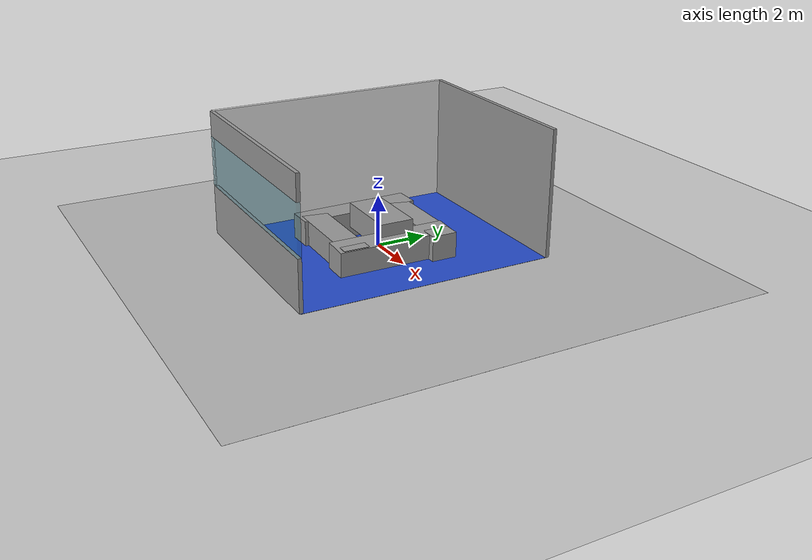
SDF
<sdf version="1.7">
 <world name="default">
  <light name="sun" type="directional">
   <pose>0 0 10 0 -0 0</pose>
   <diffuse>0.8 0.8 0.8 1</diffuse>
   <specular>0.2 0.2 0.2 1</specular>
   <attenuation>
    <range>1000</range>
    <constant>0.9</constant>
    <linear>0.01</linear>
    <quadratic>0.001</quadratic>
   </attenuation>
   <direction>-0.5 0.1 -0.9</direction>
   <spot><inner_angle>0</inner_angle><outer_angle>0</outer_angle><falloff>0</falloff></spot>
  </light>
  <model name="ground_plane">
   <static>1</static>
   <link name="link">
    <collision name="collision">
     <geometry><plane><normal>0 0 1</normal><size>7.5 8.6</size></plane></geometry>
     <surface><friction><ode><mu>100</mu><mu2>50</mu2></ode></friction></surface>
    </collision>
    <visual name="visual">
     <cast_shadows>0</cast_shadows>
     <geometry><plane><normal>0 0 1</normal><size>7.5 8.6</size></plane></geometry>
     <material>
      <script><uri>file://media/materials/scripts/gazebo.material</uri><name>Gazebo/Grey</name></script>
     </material>
    </visual>
   </link>
  </model>
  <physics name="default_physics" default="0" type="ode">
   <ode>
    <solver>
     <type>quick</type>
     <iters>10</iters>
     <sor>1.3</sor>
     <use_dynamic_moi_rescaling>0</use_dynamic_moi_rescaling>
    </solver>
    <constraints>
     <cfm>0</cfm>
     <erp>0.2</erp>
     <contact_max_correcting_vel>100</contact_max_correcting_vel>
     <contact_surface_layer>0.001</contact_surface_layer>
    </constraints>
   </ode>
   <max_step_size>0.004</max_step_size>
   <real_time_factor>1</real_time_factor>
   <real_time_update_rate>250</real_time_update_rate>
  </physics>
  <gravity>0 0 -9.8066</gravity>
  <magnetic_field>6e-06 2.3e-05 -4.2e-05</magnetic_field>
  <atmosphere type="adiabatic"/>
  <scene><ambient>0.4 0.4 0.4 1</ambient><background>0.7 0.7 0.7 1</background><shadows>1</shadows></scene>
  <spherical_coordinates>
   <surface_model>EARTH_WGS84</surface_model>
   <latitude_deg>0</latitude_deg>
   <longitude_deg>0</longitude_deg>
   <elevation>0</elevation>
   <heading_deg>0</heading_deg>
  </spherical_coordinates>
  <model name="Floor_room">
   <link name="main">
    <pose>0 0 0.01 0 -0 0</pose>
    <collision name="main_Collision"><geometry><box><size>20 20 0.001</size></box></geometry></collision>
    <visual name="main_Visual">
     <geometry><box><size>20 20 0.001</size></box></geometry>
     <material>
      <script>
       <uri>model://Floor_room/materials/scripts</uri>
       <uri>model://Floor_room/materials/textures</uri>
       <name>floor_room</name>
      </script>
     </material>
    </visual>
   </link>
   <static>1</static>
   <pose>0.043797 -0.01325 0 0 -0 0</pose>
  </model>
  <model name="window">
   <link name="link_2">
    <pose>-3.65586 -0.020997 0.361529 0 -0 0</pose>
    <inertial>
     <mass>1</mass>
     <inertia><ixx>1</ixx><ixy>0</ixy><ixz>0</ixz><iyy>1</iyy><iyz>0</iyz><izz>1</izz></inertia>
    </inertial>
    <visual name="visual">
     <pose>0 0 0.9 0 -0 0</pose>
     <geometry><box><size>8 0.15 2</size></box></geometry>
     <material>
      <lighting>1</lighting>
      <ambient>0.1 0.5 0.6 1</ambient>
      <diffuse>0.1 0.5 0.6 1</diffuse>
      <specular>0.01 0.01 0.01 1</specular>
      <emissive>0 0 0 1</emissive>
      <shader type="pixel"><normal_map>__default__</normal_map></shader>
      <script><name>ModelPreview_13::link_2::visual_MATERIAL_</name><uri>__default__</uri></script>
     </material>
     <transparency>0.7</transparency>
    </visual>
    <collision name="collision">
     <pose>0 0 0.9 0 -0 0</pose>
     <geometry><box><size>0.8 0.15 0.8</size></box></geometry>
     <surface>
      <friction>
       <ode><mu>1</mu><mu2>1</mu2><fdir1>0 0 0</fdir1><slip1>0</slip1><slip2>0</slip2></ode>
       <torsional>
        <coefficient>1</coefficient>
        <patch_radius>0</patch_radius>
        <surface_radius>0</surface_radius>
        <use_patch_radius>1</use_patch_radius>
        <ode><slip>0</slip></ode>
       </torsional>
      </friction>
      <bounce><restitution_coefficient>0</restitution_coefficient><threshold>1e+06</threshold></bounce>
      <contact>
       <collide_without_contact>0</collide_without_contact>
       <collide_without_contact_bitmask>1</collide_without_contact_bitmask>
       <collide_bitmask>1</collide_bitmask>
       <ode>
        <soft_cfm>0</soft_cfm>
        <soft_erp>0.2</soft_erp>
        <kp>1e+13</kp>
        <kd>1</kd>
        <max_vel>0.01</max_vel>
        <min_depth>0</min_depth>
       </ode>
       <bullet>
        <split_impulse>1</split_impulse>
        <split_impulse_penetration_threshold>-0.01</split_impulse_penetration_threshold>
        <soft_cfm>0</soft_cfm>
        <soft_erp>0.2</soft_erp>
        <kp>1e+13</kp>
        <kd>1</kd>
       </bullet>
      </contact>
     </surface>
    </collision>
   </link>
   <static>1</static>
   <pose>3.62277 -4.97689 1.7565 0 -0 0</pose>
  </model>
  <model name="Workshop">
   <link name="Wall_10">
    <pose>-2.5053 2.09449 2 0 0 -1.5708</pose>
    <inertial>
     <mass>1</mass>
     <inertia><ixx>1</ixx><ixy>0</ixy><ixz>0</ixz><iyy>1</iyy><iyz>0</iyz><izz>1</izz></inertia>
    </inertial>
    <visual name="Wall_10_Visual">
     <pose>0 0 0.5 0 -0 0</pose>
     <geometry><box><size>10 0.15 5</size></box></geometry>
     <material>
      <script><uri>file://media/materials/scripts/gazebo.material</uri><name>Gazebo/White</name></script>
      <ambient>1 1 1 1</ambient>
      <shader type="pixel"><normal_map>__default__</normal_map></shader>
      <diffuse>0.7 0.7 0.7 1</diffuse>
      <specular>0.01 0.01 0.01 1</specular>
      <emissive>0 0 0 1</emissive>
     </material>
    </visual>
    <collision name="Wall_10_Collision">
     <pose>0 0 0.5 0 -0 0</pose>
     <geometry><box><size>10 0.15 1</size></box></geometry>
     <surface>
      <friction>
       <ode><mu>1</mu><mu2>1</mu2><fdir1>0 0 0</fdir1><slip1>0</slip1><slip2>0</slip2></ode>
       <torsional>
        <coefficient>1</coefficient>
        <patch_radius>0</patch_radius>
        <surface_radius>0</surface_radius>
        <use_patch_radius>1</use_patch_radius>
        <ode><slip>0</slip></ode>
       </torsional>
      </friction>
      <bounce><restitution_coefficient>0</restitution_coefficient><threshold>1e+06</threshold></bounce>
      <contact>
       <collide_without_contact>0</collide_without_contact>
       <collide_without_contact_bitmask>1</collide_without_contact_bitmask>
       <collide_bitmask>1</collide_bitmask>
       <ode>
        <soft_cfm>0</soft_cfm>
        <soft_erp>0.2</soft_erp>
        <kp>1e+13</kp>
        <kd>1</kd>
        <max_vel>0.01</max_vel>
        <min_depth>0</min_depth>
       </ode>
       <bullet>
        <split_impulse>1</split_impulse>
        <split_impulse_penetration_threshold>-0.01</split_impulse_penetration_threshold>
        <soft_cfm>0</soft_cfm>
        <soft_erp>0.2</soft_erp>
        <kp>1e+13</kp>
        <kd>1</kd>
       </bullet>
      </contact>
     </surface>
    </collision>
   </link>
   <link name="Wall_11">
    <pose>1.46131 -2.90507 0.516113 0 -0 3.14159</pose>
    <inertial>
     <inertia><ixx>0</ixx><ixy>0</ixy><ixz>0</ixz><iyy>0</iyy><iyz>0</iyz><izz>0</izz></inertia>
     <mass>0</mass>
    </inertial>
    <visual name="Wall_11_Visual">
     <pose>0 0 0.5 0 -0 0</pose>
     <geometry><box><size>8 0.15 2</size></box></geometry>
     <material>
      <script><uri>file://media/materials/scripts/gazebo.material</uri><name>Gazebo/Grey</name></script>
      <ambient>1 1 1 1</ambient>
      <shader type="pixel"><normal_map>__default__</normal_map></shader>
      <emissive>0 0 0 1</emissive>
      <diffuse>0.7 0.7 0.7 1</diffuse>
      <specular>0.01 0.01 0.01 1</specular>
     </material>
    </visual>
    <collision name="Wall_11_Collision">
     <pose>0 0 0.5 0 -0 0</pose>
     <geometry><box><size>7.71217 0.15 1</size></box></geometry>
     <surface>
      <friction>
       <ode><mu>1</mu><mu2>1</mu2><fdir1>0 0 0</fdir1><slip1>0</slip1><slip2>0</slip2></ode>
       <torsional>
        <coefficient>1</coefficient>
        <patch_radius>0</patch_radius>
        <surface_radius>0</surface_radius>
        <use_patch_radius>1</use_patch_radius>
        <ode><slip>0</slip></ode>
       </torsional>
      </friction>
      <bounce><restitution_coefficient>0</restitution_coefficient><threshold>1e+06</threshold></bounce>
      <contact>
       <collide_without_contact>0</collide_without_contact>
       <collide_without_contact_bitmask>1</collide_without_contact_bitmask>
       <collide_bitmask>1</collide_bitmask>
       <ode>
        <soft_cfm>0</soft_cfm>
        <soft_erp>0.2</soft_erp>
        <kp>1e+13</kp>
        <kd>1</kd>
        <max_vel>0.01</max_vel>
        <min_depth>0</min_depth>
       </ode>
       <bullet>
        <split_impulse>1</split_impulse>
        <split_impulse_penetration_threshold>-0.01</split_impulse_penetration_threshold>
        <soft_cfm>0</soft_cfm>
        <soft_erp>0.2</soft_erp>
        <kp>1e+13</kp>
        <kd>1</kd>
       </bullet>
      </contact>
     </surface>
    </collision>
   </link>
   <link name="Wall_11_clone">
    <pose>1.4947 -2.90551 4 0 -0 3.14159</pose>
    <inertial>
     <inertia><ixx>0</ixx><ixy>0</ixy><ixz>0</ixz><iyy>0</iyy><iyz>0</iyz><izz>0</izz></inertia>
     <mass>0</mass>
    </inertial>
    <visual name="Wall_11_Visual">
     <pose>0 0 0.5 0 -0 0</pose>
     <geometry><box><size>8 0.15 1</size></box></geometry>
     <material>
      <script><uri>file://media/materials/scripts/gazebo.material</uri><name>Gazebo/Grey</name></script>
      <ambient>1 1 1 1</ambient>
      <shader type="pixel"><normal_map>__default__</normal_map></shader>
      <emissive>0 0 0 1</emissive>
      <diffuse>0.7 0.7 0.7 1</diffuse>
      <specular>0.01 0.01 0.01 1</specular>
     </material>
    </visual>
    <collision name="Wall_11_Collision">
     <pose>0 0 0.5 0 -0 0</pose>
     <geometry><box><size>7.71217 0.15 1</size></box></geometry>
     <surface>
      <friction>
       <ode><mu>1</mu><mu2>1</mu2><fdir1>0 0 0</fdir1><slip1>0</slip1><slip2>0</slip2></ode>
       <torsional>
        <coefficient>1</coefficient>
        <patch_radius>0</patch_radius>
        <surface_radius>0</surface_radius>
        <use_patch_radius>1</use_patch_radius>
        <ode><slip>0</slip></ode>
       </torsional>
      </friction>
      <bounce><restitution_coefficient>0</restitution_coefficient><threshold>1e+06</threshold></bounce>
      <contact>
       <collide_without_contact>0</collide_without_contact>
       <collide_without_contact_bitmask>1</collide_without_contact_bitmask>
       <collide_bitmask>1</collide_bitmask>
       <ode>
        <soft_cfm>0</soft_cfm>
        <soft_erp>0.2</soft_erp>
        <kp>1e+13</kp>
        <kd>1</kd>
        <max_vel>0.01</max_vel>
        <min_depth>0</min_depth>
       </ode>
       <bullet>
        <split_impulse>1</split_impulse>
        <split_impulse_penetration_threshold>-0.01</split_impulse_penetration_threshold>
        <soft_cfm>0</soft_cfm>
        <soft_erp>0.2</soft_erp>
        <kp>1e+13</kp>
        <kd>1</kd>
       </bullet>
      </contact>
     </surface>
    </collision>
   </link>
   <link name="Wall_13">
    <pose>1.4947 7.09449 2 0 -0 3.14159</pose>
    <inertial>
     <mass>1</mass>
     <inertia><ixx>1</ixx><ixy>0</ixy><ixz>0</ixz><iyy>1</iyy><iyz>0</iyz><izz>1</izz></inertia>
    </inertial>
    <visual name="Wall_13_Visual">
     <pose>0 0 0.5 0 -0 0</pose>
     <geometry><box><size>8 0.15 5</size></box></geometry>
     <material>
      <script><uri>file://media/materials/scripts/gazebo.material</uri><name>Gazebo/Grey</name></script>
      <ambient>1 1 1 1</ambient>
      <shader type="pixel"><normal_map>__default__</normal_map></shader>
      <diffuse>0.7 0.7 0.7 1</diffuse>
      <specular>0.01 0.01 0.01 1</specular>
      <emissive>0 0 0 1</emissive>
     </material>
    </visual>
    <collision name="Wall_13_Collision">
     <pose>0 0 0.5 0 -0 0</pose>
     <geometry><box><size>4.55706 0.15 1</size></box></geometry>
     <surface>
      <friction>
       <ode><mu>1</mu><mu2>1</mu2><fdir1>0 0 0</fdir1><slip1>0</slip1><slip2>0</slip2></ode>
       <torsional>
        <coefficient>1</coefficient>
        <patch_radius>0</patch_radius>
        <surface_radius>0</surface_radius>
        <use_patch_radius>1</use_patch_radius>
        <ode><slip>0</slip></ode>
       </torsional>
      </friction>
      <bounce><restitution_coefficient>0</restitution_coefficient><threshold>1e+06</threshold></bounce>
      <contact>
       <collide_without_contact>0</collide_without_contact>
       <collide_without_contact_bitmask>1</collide_without_contact_bitmask>
       <collide_bitmask>1</collide_bitmask>
       <ode>
        <soft_cfm>0</soft_cfm>
        <soft_erp>0.2</soft_erp>
        <kp>1e+13</kp>
        <kd>1</kd>
        <max_vel>0.01</max_vel>
        <min_depth>0</min_depth>
       </ode>
       <bullet>
        <split_impulse>1</split_impulse>
        <split_impulse_penetration_threshold>-0.01</split_impulse_penetration_threshold>
        <soft_cfm>0</soft_cfm>
        <soft_erp>0.2</soft_erp>
        <kp>1e+13</kp>
        <kd>1</kd>
       </bullet>
      </contact>
     </surface>
    </collision>
   </link>
   <link name="link_0">
    <inertial>
     <mass>1</mass>
     <inertia>
      <ixx>0.166667</ixx>
      <ixy>0</ixy>
      <ixz>0</ixz>
      <iyy>0.166667</iyy>
      <iyz>0</iyz>
      <izz>0.166667</izz>
     </inertia>
    </inertial>
    <pose>1.49282 2.06191 0.012848 0 0 -1.5708</pose>
    <visual name="visual">
     <geometry><box><size>10 8 0.013</size></box></geometry>
     <material>
      <lighting>1</lighting>
      <script><uri>file://media/materials/scripts/gazebo.material</uri><name>Gazebo/Blue</name></script>
      <shader type="pixel"><normal_map>__default__</normal_map></shader>
      <ambient>0.1 0.5 0.6 1</ambient>
      <diffuse>0.1 0.5 0.6 1</diffuse>
      <specular>0.01 0.01 0.01 1</specular>
      <emissive>0 0 0 1</emissive>
     </material>
    </visual>
    <collision name="collision">
     <geometry><box><size>1 1 1</size></box></geometry>
     <surface>
      <friction>
       <ode><mu>1</mu><mu2>1</mu2><fdir1>0 0 0</fdir1><slip1>0</slip1><slip2>0</slip2></ode>
       <torsional>
        <coefficient>1</coefficient>
        <patch_radius>0</patch_radius>
        <surface_radius>0</surface_radius>
        <use_patch_radius>1</use_patch_radius>
        <ode><slip>0</slip></ode>
       </torsional>
      </friction>
      <bounce><restitution_coefficient>0</restitution_coefficient><threshold>1e+06</threshold></bounce>
      <contact>
       <collide_without_contact>0</collide_without_contact>
       <collide_without_contact_bitmask>1</collide_without_contact_bitmask>
       <collide_bitmask>1</collide_bitmask>
       <ode>
        <soft_cfm>0</soft_cfm>
        <soft_erp>0.2</soft_erp>
        <kp>1e+13</kp>
        <kd>1</kd>
        <max_vel>0.01</max_vel>
        <min_depth>0</min_depth>
       </ode>
       <bullet>
        <split_impulse>1</split_impulse>
        <split_impulse_penetration_threshold>-0.01</split_impulse_penetration_threshold>
        <soft_cfm>0</soft_cfm>
        <soft_erp>0.2</soft_erp>
        <kp>1e+13</kp>
        <kd>1</kd>
       </bullet>
      </contact>
     </surface>
    </collision>
   </link>
   <static>1</static>
   <pose>-1.4947 -2.09449 0 0 -0 0</pose>
  </model>
  <model name="unit_box_0">
   <pose>-0.058316 -1.91506 0.510505 -5.5e-05 1.8e-05 -0.014081</pose>
   <link name="link">
    <inertial>
     <mass>1</mass>
     <inertia>
      <ixx>0.166667</ixx>
      <ixy>0</ixy>
      <ixz>0</ixz>
      <iyy>0.166667</iyy>
      <iyz>0</iyz>
      <izz>0.166667</izz>
     </inertia>
    </inertial>
    <collision name="collision"><geometry><box><size>0.421184 0.1 1</size></box></geometry></collision>
    <visual name="visual">
     <geometry><box><size>4.21184 1 1</size></box></geometry>
     <material>
      <script><name>Gazebo/Grey</name><uri>file://media/materials/scripts/gazebo.material</uri></script>
     </material>
    </visual>
   </link>
  </model>
  <model name="unit_box_1">
   <pose>0.188304 1.52311 0.510377 -8e-05 8e-06 -0.003851</pose>
   <link name="link">
    <inertial>
     <mass>1</mass>
     <inertia>
      <ixx>0.166667</ixx>
      <ixy>0</ixy>
      <ixz>0</ixz>
      <iyy>0.166667</iyy>
      <iyz>0</iyz>
      <izz>0.166667</izz>
     </inertia>
    </inertial>
    <collision name="collision"><geometry><box><size>0.43357 0.1 1</size></box></geometry></collision>
    <visual name="visual">
     <geometry><box><size>4.3357 1 1</size></box></geometry>
     <material>
      <script><name>Gazebo/Grey</name><uri>file://media/materials/scripts/gazebo.material</uri></script>
     </material>
    </visual>
   </link>
  </model>
  <model name="unit_box_2">
   <pose>1.59191 -0.283852 0.5124 -5.5e-05 0.050598 -0.006875</pose>
   <link name="link">
    <inertial>
     <mass>1</mass>
     <inertia>
      <ixx>0.166667</ixx>
      <ixy>0</ixy>
      <ixz>0</ixz>
      <iyy>0.166667</iyy>
      <iyz>0</iyz>
      <izz>0.166667</izz>
     </inertia>
    </inertial>
    <collision name="collision"><geometry><box><size>0.1 0.465094 1</size></box></geometry></collision>
    <visual name="visual">
     <geometry><box><size>1 4.65094 1</size></box></geometry>
     <material>
      <script><name>Gazebo/Grey</name><uri>file://media/materials/scripts/gazebo.material</uri></script>
     </material>
    </visual>
   </link>
  </model>
  <model name="unit_box">
   <pose>-1.72019 -0.158912 0.510505 -1.7e-05 0.00022 0.016339</pose>
   <link name="link">
    <inertial>
     <mass>1</mass>
     <inertia>
      <ixx>0.166667</ixx>
      <ixy>0</ixy>
      <ixz>0</ixz>
      <iyy>0.166667</iyy>
      <iyz>0</iyz>
      <izz>0.166667</izz>
     </inertia>
    </inertial>
    <collision name="collision"><geometry><box><size>0.1 0.476025 0.999999</size></box></geometry></collision>
    <visual name="visual">
     <geometry><box><size>1 4.76025 0.999999</size></box></geometry>
     <material>
      <script><name>Gazebo/Grey</name><uri>file://media/materials/scripts/gazebo.material</uri></script>
     </material>
    </visual>
   </link>
  </model>
  <model name="unit_box_3">
   <pose>0.246169 -0.041809 1.01285 -0 -1.7e-05 -0.006879</pose>
   <link name="link">
    <inertial>
     <mass>1</mass>
     <inertia>
      <ixx>0.166667</ixx>
      <ixy>0</ixy>
      <ixz>0</ixz>
      <iyy>0.166667</iyy>
      <iyz>0</iyz>
      <izz>0.166667</izz>
     </inertia>
    </inertial>
    <collision name="collision"><geometry><box><size>2.59465 1.32933 1</size></box></geometry></collision>
    <visual name="visual">
     <geometry><box><size>2.59465 1.32933 1</size></box></geometry>
     <material>
      <script><name>Gazebo/Grey</name><uri>file://media/materials/scripts/gazebo.material</uri></script>
     </material>
    </visual>
   </link>
  </model>
 </world>
</sdf>
